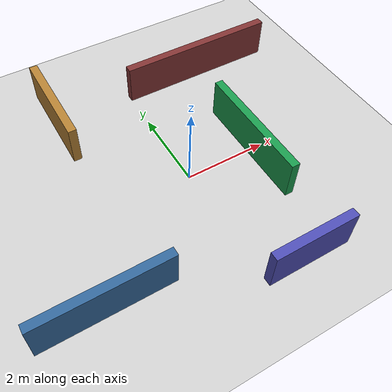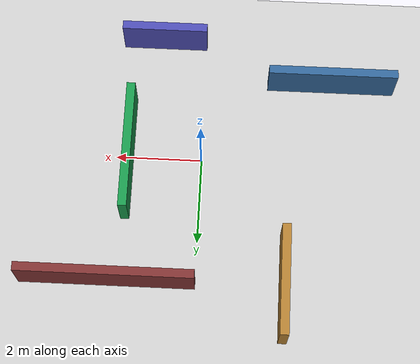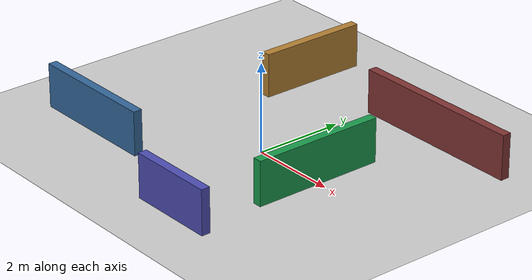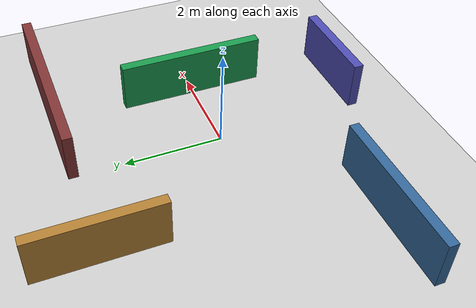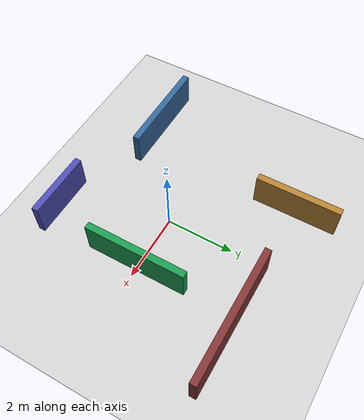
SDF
<?xml version="1.0" ?>
<sdf version="1.9">
  <world name="car_world">

    <!-- Physics and Plugins -->
    <physics name="default_physics" type="ode">
      <max_step_size>0.001</max_step_size>
      <real_time_factor>1.0</real_time_factor>
    </physics>
    <plugin filename="libgz-sim-physics-system.so" name="gz::sim::systems::Physics">
      <engine>bullet</engine>
    </plugin>

    <plugin filename="libgz-sim-user-commands-system.so" name="gz::sim::systems::UserCommands"/>

    <plugin filename="libgz-sim-scene-broadcaster-system.so" name="gz::sim::systems::SceneBroadcaster"/>

    <!-- Directional Sun -->
    <light type="directional" name="sun">
      <cast_shadows>true</cast_shadows>
      <pose>0 0 10 0 0 0</pose>
      <diffuse>0.8 0.8 0.8 1</diffuse>
      <specular>0.2 0.2 0.2 1</specular>
      <attenuation>
        <range>1000</range>
        <constant>0.9</constant>
        <linear>0.01</linear>
        <quadratic>0.001</quadratic>
      </attenuation>
      <direction>-0.5 0.1 -0.9</direction>
    </light>

    <!-- Manual Ground Plane -->
    <model name="ground_plane">
      <static>true</static>
      <link name="link">
        <collision name="collision">
          <geometry>
            <plane>
              <normal>0 0 1</normal>
            </plane>
          </geometry>
        </collision>
        <visual name="visual">
          <geometry>
            <plane>
              <normal>0 0 1</normal>
              <size>100 100</size>
            </plane>
          </geometry>
          <material>
            <ambient>0.8 0.8 0.8 1</ambient>
            <diffuse>0.8 0.8 0.8 1</diffuse>
            <specular>0.8 0.8 0.8 1</specular>
          </material>
        </visual>
      </link>
    </model>

    <!-- Wall 1 (horizontal) -->
    <model name="wall_1">
      <static>true</static>
      <pose>2 3 0.5 0 0 0</pose>
      <link name="link">
        <collision name="collision">
          <geometry>
            <box><size>4 0.2 1</size></box>
          </geometry>
        </collision>
        <visual name="visual">
          <geometry>
            <box><size>4 0.2 1</size></box>
          </geometry>
          <material>
            <ambient>0.5 0.2 0.2 1</ambient>
            <diffuse>0.5 0.2 0.2 1</diffuse>
          </material>
        </visual>
      </link>
    </model>

    <!-- Wall 2 (horizontal) -->
    <model name="wall_2">
      <static>true</static>
      <pose>-3 -2 0.5 0 0 0</pose>
      <link name="link">
        <collision name="collision">
          <geometry>
            <box><size>3 0.2 1</size></box>
          </geometry>
        </collision>
        <visual name="visual">
          <geometry>
            <box><size>3 0.2 1</size></box>
          </geometry>
          <material>
            <ambient>0.2 0.4 0.6 1</ambient>
            <diffuse>0.2 0.4 0.6 1</diffuse>
          </material>
        </visual>
      </link>
    </model>

    <!-- Wall 3 (vertical) -->
    <model name="wall_3">
      <static>true</static>
      <pose>1.7 0 0.5 0 0 1.5708</pose>
      <link name="link">
        <collision name="collision">
          <geometry>
            <box><size>3 0.2 1</size></box>
          </geometry>
        </collision>
        <visual name="visual">
          <geometry>
            <box><size>3 0.2 1</size></box>
          </geometry>
          <material>
            <ambient>0.1 0.6 0.3 1</ambient>
            <diffuse>0.1 0.6 0.3 1</diffuse>
          </material>
        </visual>
      </link>
    </model>

    <!-- Wall 4 (short horizontal) -->
    <model name="wall_4">
      <static>true</static>
      <pose>1 -3 0.5 0 0 0</pose>
      <link name="link">
        <collision name="collision">
          <geometry>
            <box><size>2 0.2 1</size></box>
          </geometry>
        </collision>
        <visual name="visual">
          <geometry>
            <box><size>2 0.2 1</size></box>
          </geometry>
          <material>
            <ambient>0.3 0.3 0.7 1</ambient>
            <diffuse>0.3 0.3 0.7 1</diffuse>
          </material>
        </visual>
      </link>
    </model>

    <!-- Wall 5 (vertical) -->
    <model name="wall_5">
      <static>true</static>
      <pose>-2 3 0.5 0 0 1.5708</pose>
      <link name="link">
        <collision name="collision">
          <geometry>
            <box><size>2.5 0.2 1</size></box>
          </geometry>
        </collision>
        <visual name="visual">
          <geometry>
            <box><size>2.5 0.2 1</size></box>
          </geometry>
          <material>
            <ambient>0.7 0.5 0.2 1</ambient>
            <diffuse>0.7 0.5 0.2 1</diffuse>
          </material>
        </visual>
      </link>
    </model>

  </world>
</sdf>
